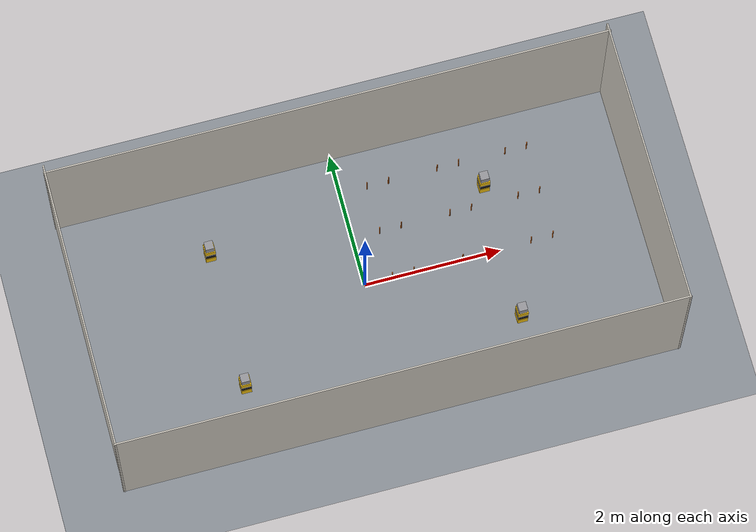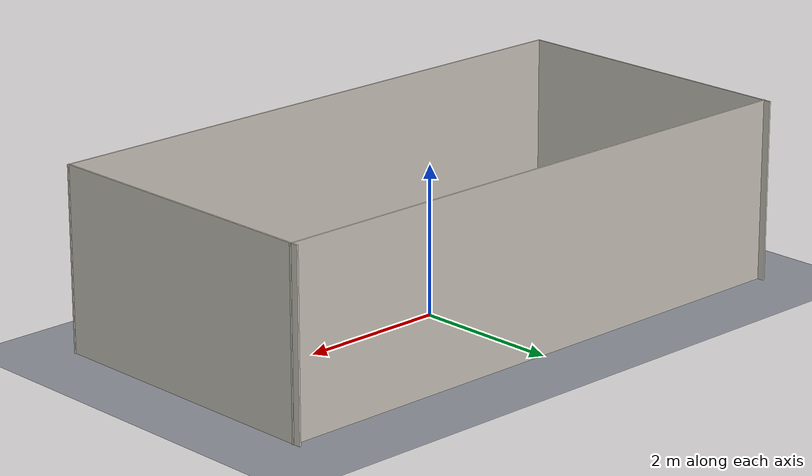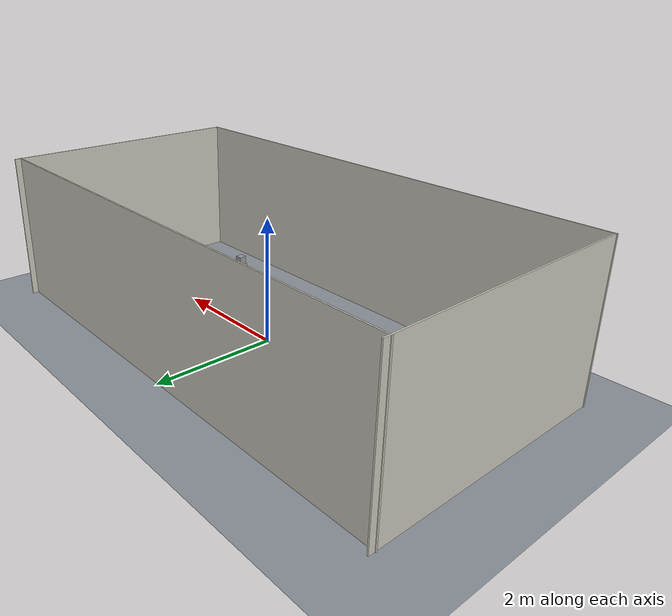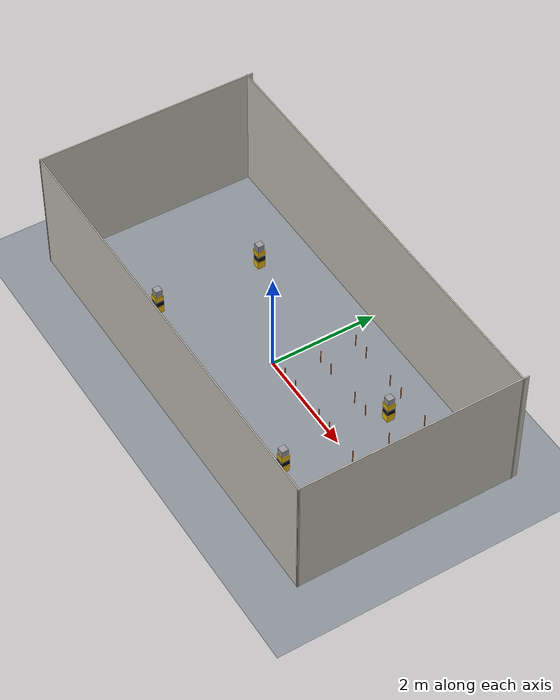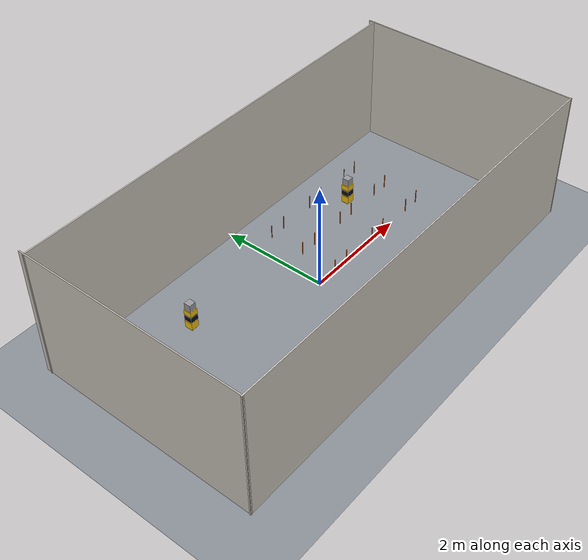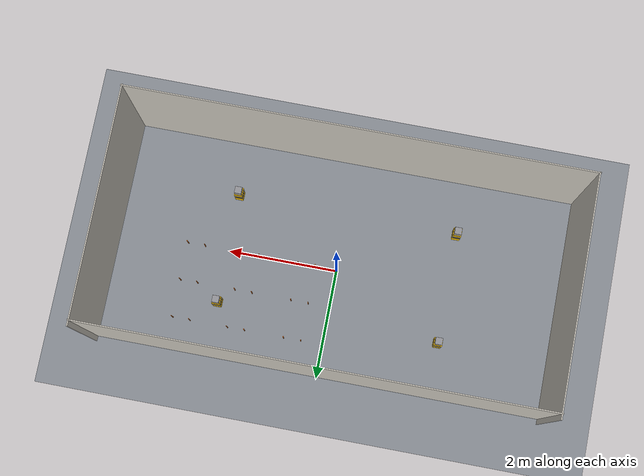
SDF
<?xml version="1.0" ?>
<sdf version="1.7">
  <world name="crowd_nav_depot_scaled">
    <physics name="10ms" type="ignored">
      <max_step_size>0.01</max_step_size>
      <real_time_factor>1.0</real_time_factor>
    </physics>
    <plugin filename="libignition-gazebo-physics-system.so" name="ignition::gazebo::systems::Physics"/>
    <plugin filename="libignition-gazebo-user-commands-system.so" name="ignition::gazebo::systems::UserCommands"/>
    <plugin filename="libignition-gazebo-scene-broadcaster-system.so" name="ignition::gazebo::systems::SceneBroadcaster"/>
    <plugin filename="ignition-gazebo-sensors-system" name="ignition::gazebo::systems::Sensors">
      <render_engine>ogre2</render_engine>
    </plugin>

    <scene>
      <ambient>0.40 0.40 0.42 1</ambient>
      <background>0.55 0.60 0.65 1</background>
      <shadows>true</shadows>
      <grid>false</grid>
    </scene>

    <light type="directional" name="sun">
      <cast_shadows>true</cast_shadows>
      <pose>0 0 10 0 0 0</pose>
      <diffuse>0.85 0.82 0.78 1</diffuse>
      <specular>0.2 0.2 0.2 1</specular>
      <attenuation><range>1000</range><constant>0.9</constant><linear>0.01</linear><quadratic>0.001</quadratic></attenuation>
      <direction>-0.5 0.1 -0.9</direction>
    </light>

    <light type="point" name="ceiling_light_1">
      <pose>-2.5 0 2.3 0 0 0</pose>
      <diffuse>1.0 0.95 0.85 1</diffuse>
      <specular>0.3 0.3 0.3 1</specular>
      <attenuation><range>8</range><constant>0.3</constant><linear>0.2</linear><quadratic>0.05</quadratic></attenuation>
      <cast_shadows>false</cast_shadows>
    </light>
    <light type="point" name="ceiling_light_2">
      <pose>0.5 0 2.3 0 0 0</pose>
      <diffuse>1.0 0.95 0.85 1</diffuse>
      <specular>0.3 0.3 0.3 1</specular>
      <attenuation><range>8</range><constant>0.3</constant><linear>0.2</linear><quadratic>0.05</quadratic></attenuation>
      <cast_shadows>false</cast_shadows>
    </light>
    <light type="point" name="ceiling_light_3">
      <pose>3.2 0 2.3 0 0 0</pose>
      <diffuse>1.0 0.95 0.85 1</diffuse>
      <specular>0.3 0.3 0.3 1</specular>
      <attenuation><range>8</range><constant>0.3</constant><linear>0.2</linear><quadratic>0.05</quadratic></attenuation>
      <cast_shadows>false</cast_shadows>
    </light>

    <model name="ground_plane">
      <static>true</static>
      <link name="link">
        <collision name="collision">
          <geometry><plane><normal>0 0 1</normal><size>20 20</size></plane></geometry>
          <surface><friction><ode/></friction></surface>
        </collision>
        <visual name="visual">
          <geometry><plane><normal>0 0 1</normal><size>20 20</size></plane></geometry>
          <material><ambient>0.55 0.57 0.60 1</ambient><diffuse>0.55 0.57 0.60 1</diffuse><specular>0.25 0.25 0.28 1</specular></material>
        </visual>
      </link>
    </model>

    <model name="depot_scaled">
      <static>true</static>
      <link name="link">

        <visual name='wall1_visual'>
          <pose>0.00000 -2.05548 1.21500 0 0 0</pose>
          <geometry><box><size>8.14509 0.02160 2.43000</size></box></geometry>
          <material><ambient>0.80 0.78 0.74 1</ambient><diffuse>0.80 0.78 0.74 1</diffuse><specular>0.15 0.15 0.15 1</specular></material>
        </visual>

        <collision name='wall1_collision'>
          <pose>0.00000 -2.05548 1.21500 0 0 0</pose>
          <geometry><box><size>8.14509 0.02160 2.43000</size></box></geometry>
        </collision>

        <visual name='wall2_visual'>
          <pose>0.00000 1.96762 1.21500 0 0 0</pose>
          <geometry><box><size>8.14509 0.02160 2.43000</size></box></geometry>
          <material><ambient>0.80 0.78 0.74 1</ambient><diffuse>0.80 0.78 0.74 1</diffuse><specular>0.15 0.15 0.15 1</specular></material>
        </visual>

        <collision name='wall2_collision'>
          <pose>0.00000 1.96762 1.21500 0 0 0</pose>
          <geometry><box><size>8.14509 0.02160 2.43000</size></box></geometry>
        </collision>

        <visual name='wall3_visual'>
          <pose>-4.05000 0.00000 1.21500 0 0 0</pose>
          <geometry><box><size>0.02160 4.14720 2.43000</size></box></geometry>
          <material><ambient>0.80 0.78 0.74 1</ambient><diffuse>0.80 0.78 0.74 1</diffuse><specular>0.15 0.15 0.15 1</specular></material>
        </visual>

        <collision name='wall3_collision'>
          <pose>-4.05000 0.00000 1.21500 0 0 0</pose>
          <geometry><box><size>0.02160 4.14720 2.43000</size></box></geometry>
        </collision>

        <visual name='wall4_visual'>
          <pose>4.05000 0.00000 1.21500 0 0 0</pose>
          <geometry><box><size>0.02160 4.14720 2.43000</size></box></geometry>
          <material><ambient>0.80 0.78 0.74 1</ambient><diffuse>0.80 0.78 0.74 1</diffuse><specular>0.15 0.15 0.15 1</specular></material>
        </visual>

        <collision name='wall4_collision'>
          <pose>4.05000 0.00000 1.21500 0 0 0</pose>
          <geometry><box><size>0.02160 4.14720 2.43000</size></box></geometry>
        </collision>

        <visual name='shelf1_visual'>
          <pose>0.39587 -0.00474 0.13500 0 0 0</pose>
          <geometry><cylinder><radius>0.00810</radius><length>0.27000</length></cylinder></geometry>
          <material><ambient>0.85 0.42 0.10 1</ambient><diffuse>0.85 0.42 0.10 1</diffuse><specular>0.35 0.30 0.20 1</specular></material>
        </visual>

        <collision name='shelf1_collision'>
          <pose>0.39587 -0.00474 0.13500 0 0 0</pose>
          <geometry><cylinder><radius>0.00810</radius><length>0.27000</length></cylinder></geometry>
        </collision>

        <visual name='shelf2_visual'>
          <pose>0.71504 -0.00474 0.13500 0 0 0</pose>
          <geometry><cylinder><radius>0.00810</radius><length>0.27000</length></cylinder></geometry>
          <material><ambient>0.85 0.42 0.10 1</ambient><diffuse>0.85 0.42 0.10 1</diffuse><specular>0.35 0.30 0.20 1</specular></material>
        </visual>

        <collision name='shelf2_collision'>
          <pose>0.71504 -0.00474 0.13500 0 0 0</pose>
          <geometry><cylinder><radius>0.00810</radius><length>0.27000</length></cylinder></geometry>
        </collision>

        <visual name='shelf3_visual'>
          <pose>1.43767 -0.00474 0.13500 0 0 0</pose>
          <geometry><cylinder><radius>0.00810</radius><length>0.27000</length></cylinder></geometry>
          <material><ambient>0.85 0.42 0.10 1</ambient><diffuse>0.85 0.42 0.10 1</diffuse><specular>0.35 0.30 0.20 1</specular></material>
        </visual>

        <collision name='shelf3_collision'>
          <pose>1.43767 -0.00474 0.13500 0 0 0</pose>
          <geometry><cylinder><radius>0.00810</radius><length>0.27000</length></cylinder></geometry>
        </collision>

        <visual name='shelf4_visual'>
          <pose>1.75670 -0.00474 0.13500 0 0 0</pose>
          <geometry><cylinder><radius>0.00810</radius><length>0.27000</length></cylinder></geometry>
          <material><ambient>0.85 0.42 0.10 1</ambient><diffuse>0.85 0.42 0.10 1</diffuse><specular>0.35 0.30 0.20 1</specular></material>
        </visual>

        <collision name='shelf4_collision'>
          <pose>1.75670 -0.00474 0.13500 0 0 0</pose>
          <geometry><cylinder><radius>0.00810</radius><length>0.27000</length></cylinder></geometry>
        </collision>

        <visual name='shelf5_visual'>
          <pose>2.45047 -0.00474 0.13500 0 0 0</pose>
          <geometry><cylinder><radius>0.00810</radius><length>0.27000</length></cylinder></geometry>
          <material><ambient>0.85 0.42 0.10 1</ambient><diffuse>0.85 0.42 0.10 1</diffuse><specular>0.35 0.30 0.20 1</specular></material>
        </visual>

        <collision name='shelf5_collision'>
          <pose>2.45047 -0.00474 0.13500 0 0 0</pose>
          <geometry><cylinder><radius>0.00810</radius><length>0.27000</length></cylinder></geometry>
        </collision>

        <visual name='shelf6_visual'>
          <pose>2.76966 -0.00474 0.13500 0 0 0</pose>
          <geometry><cylinder><radius>0.00810</radius><length>0.27000</length></cylinder></geometry>
          <material><ambient>0.85 0.42 0.10 1</ambient><diffuse>0.85 0.42 0.10 1</diffuse><specular>0.35 0.30 0.20 1</specular></material>
        </visual>

        <collision name='shelf6_collision'>
          <pose>2.76966 -0.00474 0.13500 0 0 0</pose>
          <geometry><cylinder><radius>0.00810</radius><length>0.27000</length></cylinder></geometry>
        </collision>

        <visual name='shelf7_visual'>
          <pose>0.39587 0.69293 0.13500 0 0 0</pose>
          <geometry><cylinder><radius>0.00810</radius><length>0.27000</length></cylinder></geometry>
          <material><ambient>0.85 0.42 0.10 1</ambient><diffuse>0.85 0.42 0.10 1</diffuse><specular>0.35 0.30 0.20 1</specular></material>
        </visual>

        <collision name='shelf7_collision'>
          <pose>0.39587 0.69293 0.13500 0 0 0</pose>
          <geometry><cylinder><radius>0.00810</radius><length>0.27000</length></cylinder></geometry>
        </collision>

        <visual name='shelf8_visual'>
          <pose>0.71504 0.69293 0.13500 0 0 0</pose>
          <geometry><cylinder><radius>0.00810</radius><length>0.27000</length></cylinder></geometry>
          <material><ambient>0.85 0.42 0.10 1</ambient><diffuse>0.85 0.42 0.10 1</diffuse><specular>0.35 0.30 0.20 1</specular></material>
        </visual>

        <collision name='shelf8_collision'>
          <pose>0.71504 0.69293 0.13500 0 0 0</pose>
          <geometry><cylinder><radius>0.00810</radius><length>0.27000</length></cylinder></geometry>
        </collision>

        <visual name='shelf9_visual'>
          <pose>1.43767 0.69293 0.13500 0 0 0</pose>
          <geometry><cylinder><radius>0.00810</radius><length>0.27000</length></cylinder></geometry>
          <material><ambient>0.85 0.42 0.10 1</ambient><diffuse>0.85 0.42 0.10 1</diffuse><specular>0.35 0.30 0.20 1</specular></material>
        </visual>

        <collision name='shelf9_collision'>
          <pose>1.43767 0.69293 0.13500 0 0 0</pose>
          <geometry><cylinder><radius>0.00810</radius><length>0.27000</length></cylinder></geometry>
        </collision>

        <visual name='shelf10_visual'>
          <pose>1.75670 0.69293 0.13500 0 0 0</pose>
          <geometry><cylinder><radius>0.00810</radius><length>0.27000</length></cylinder></geometry>
          <material><ambient>0.85 0.42 0.10 1</ambient><diffuse>0.85 0.42 0.10 1</diffuse><specular>0.35 0.30 0.20 1</specular></material>
        </visual>

        <collision name='shelf10_collision'>
          <pose>1.75670 0.69293 0.13500 0 0 0</pose>
          <geometry><cylinder><radius>0.00810</radius><length>0.27000</length></cylinder></geometry>
        </collision>

        <visual name='shelf11_visual'>
          <pose>2.45047 0.69293 0.13500 0 0 0</pose>
          <geometry><cylinder><radius>0.00810</radius><length>0.27000</length></cylinder></geometry>
          <material><ambient>0.85 0.42 0.10 1</ambient><diffuse>0.85 0.42 0.10 1</diffuse><specular>0.35 0.30 0.20 1</specular></material>
        </visual>

        <collision name='shelf11_collision'>
          <pose>2.45047 0.69293 0.13500 0 0 0</pose>
          <geometry><cylinder><radius>0.00810</radius><length>0.27000</length></cylinder></geometry>
        </collision>

        <visual name='shelf12_visual'>
          <pose>2.76966 0.69293 0.13500 0 0 0</pose>
          <geometry><cylinder><radius>0.00810</radius><length>0.27000</length></cylinder></geometry>
          <material><ambient>0.85 0.42 0.10 1</ambient><diffuse>0.85 0.42 0.10 1</diffuse><specular>0.35 0.30 0.20 1</specular></material>
        </visual>

        <collision name='shelf12_collision'>
          <pose>2.76966 0.69293 0.13500 0 0 0</pose>
          <geometry><cylinder><radius>0.00810</radius><length>0.27000</length></cylinder></geometry>
        </collision>

        <visual name='shelf13_visual'>
          <pose>0.39587 1.39042 0.13500 0 0 0</pose>
          <geometry><cylinder><radius>0.00810</radius><length>0.27000</length></cylinder></geometry>
          <material><ambient>0.85 0.42 0.10 1</ambient><diffuse>0.85 0.42 0.10 1</diffuse><specular>0.35 0.30 0.20 1</specular></material>
        </visual>

        <collision name='shelf13_collision'>
          <pose>0.39587 1.39042 0.13500 0 0 0</pose>
          <geometry><cylinder><radius>0.00810</radius><length>0.27000</length></cylinder></geometry>
        </collision>

        <visual name='shelf14_visual'>
          <pose>0.71504 1.39042 0.13500 0 0 0</pose>
          <geometry><cylinder><radius>0.00810</radius><length>0.27000</length></cylinder></geometry>
          <material><ambient>0.85 0.42 0.10 1</ambient><diffuse>0.85 0.42 0.10 1</diffuse><specular>0.35 0.30 0.20 1</specular></material>
        </visual>

        <collision name='shelf14_collision'>
          <pose>0.71504 1.39042 0.13500 0 0 0</pose>
          <geometry><cylinder><radius>0.00810</radius><length>0.27000</length></cylinder></geometry>
        </collision>

        <visual name='shelf15_visual'>
          <pose>1.43767 1.39042 0.13500 0 0 0</pose>
          <geometry><cylinder><radius>0.00810</radius><length>0.27000</length></cylinder></geometry>
          <material><ambient>0.85 0.42 0.10 1</ambient><diffuse>0.85 0.42 0.10 1</diffuse><specular>0.35 0.30 0.20 1</specular></material>
        </visual>

        <collision name='shelf15_collision'>
          <pose>1.43767 1.39042 0.13500 0 0 0</pose>
          <geometry><cylinder><radius>0.00810</radius><length>0.27000</length></cylinder></geometry>
        </collision>

        <visual name='shelf16_visual'>
          <pose>1.75670 1.39042 0.13500 0 0 0</pose>
          <geometry><cylinder><radius>0.00810</radius><length>0.27000</length></cylinder></geometry>
          <material><ambient>0.85 0.42 0.10 1</ambient><diffuse>0.85 0.42 0.10 1</diffuse><specular>0.35 0.30 0.20 1</specular></material>
        </visual>

        <collision name='shelf16_collision'>
          <pose>1.75670 1.39042 0.13500 0 0 0</pose>
          <geometry><cylinder><radius>0.00810</radius><length>0.27000</length></cylinder></geometry>
        </collision>

        <visual name='shelf17_visual'>
          <pose>2.45047 1.39042 0.13500 0 0 0</pose>
          <geometry><cylinder><radius>0.00810</radius><length>0.27000</length></cylinder></geometry>
          <material><ambient>0.85 0.42 0.10 1</ambient><diffuse>0.85 0.42 0.10 1</diffuse><specular>0.35 0.30 0.20 1</specular></material>
        </visual>

        <collision name='shelf17_collision'>
          <pose>2.45047 1.39042 0.13500 0 0 0</pose>
          <geometry><cylinder><radius>0.00810</radius><length>0.27000</length></cylinder></geometry>
        </collision>

        <visual name='shelf18_visual'>
          <pose>2.76966 1.39042 0.13500 0 0 0</pose>
          <geometry><cylinder><radius>0.00810</radius><length>0.27000</length></cylinder></geometry>
          <material><ambient>0.85 0.42 0.10 1</ambient><diffuse>0.85 0.42 0.10 1</diffuse><specular>0.35 0.30 0.20 1</specular></material>
        </visual>

        <collision name='shelf18_collision'>
          <pose>2.76966 1.39042 0.13500 0 0 0</pose>
          <geometry><cylinder><radius>0.00810</radius><length>0.27000</length></cylinder></geometry>
        </collision>

        <visual name='pilar1_visual'>
          <pose>-2.03585 0.97608 0.27000 0 0 0</pose>
          <geometry><box><size>0.12555 0.12555 0.54000</size></box></geometry>
          <material><ambient>0.60 0.60 0.62 1</ambient><diffuse>0.60 0.60 0.62 1</diffuse><specular>0.20 0.20 0.20 1</specular></material>
        </visual>

        <collision name='pilar1_collision'>
          <pose>-2.03585 0.97608 0.27000 0 0 0</pose>
          <geometry><box><size>0.12555 0.12555 0.54000</size></box></geometry>
        </collision>

        <visual name='pilar1_hazard_band1'>
          <pose>-2.03585 0.97608 0.09000 0 0 0</pose>
          <geometry><box><size>0.15000 0.15000 0.14000</size></box></geometry>
          <material><ambient>0.95 0.75 0.05 1</ambient><diffuse>0.95 0.75 0.05 1</diffuse></material>
        </visual>
        <visual name='pilar1_hazard_band2'>
          <pose>-2.03585 0.97608 0.23000 0 0 0</pose>
          <geometry><box><size>0.15000 0.15000 0.10000</size></box></geometry>
          <material><ambient>0.05 0.05 0.05 1</ambient><diffuse>0.05 0.05 0.05 1</diffuse></material>
        </visual>
        <visual name='pilar1_hazard_band3'>
          <pose>-2.03585 0.97608 0.35000 0 0 0</pose>
          <geometry><box><size>0.15000 0.15000 0.10000</size></box></geometry>
          <material><ambient>0.95 0.75 0.05 1</ambient><diffuse>0.95 0.75 0.05 1</diffuse></material>
        </visual>

        <visual name='pilar2_visual'>
          <pose>2.01353 0.97608 0.27000 0 0 0</pose>
          <geometry><box><size>0.12555 0.12555 0.54000</size></box></geometry>
          <material><ambient>0.60 0.60 0.62 1</ambient><diffuse>0.60 0.60 0.62 1</diffuse><specular>0.20 0.20 0.20 1</specular></material>
        </visual>

        <collision name='pilar2_collision'>
          <pose>2.01353 0.97608 0.27000 0 0 0</pose>
          <geometry><box><size>0.12555 0.12555 0.54000</size></box></geometry>
        </collision>

        <visual name='pilar2_hazard_band1'>
          <pose>2.01353 0.97608 0.09000 0 0 0</pose>
          <geometry><box><size>0.15000 0.15000 0.14000</size></box></geometry>
          <material><ambient>0.95 0.75 0.05 1</ambient><diffuse>0.95 0.75 0.05 1</diffuse></material>
        </visual>
        <visual name='pilar2_hazard_band2'>
          <pose>2.01353 0.97608 0.23000 0 0 0</pose>
          <geometry><box><size>0.15000 0.15000 0.10000</size></box></geometry>
          <material><ambient>0.05 0.05 0.05 1</ambient><diffuse>0.05 0.05 0.05 1</diffuse></material>
        </visual>
        <visual name='pilar2_hazard_band3'>
          <pose>2.01353 0.97608 0.35000 0 0 0</pose>
          <geometry><box><size>0.15000 0.15000 0.10000</size></box></geometry>
          <material><ambient>0.95 0.75 0.05 1</ambient><diffuse>0.95 0.75 0.05 1</diffuse></material>
        </visual>

        <visual name='pilar3_visual'>
          <pose>-2.03585 -1.04914 0.27000 0 0 0</pose>
          <geometry><box><size>0.12555 0.12555 0.54000</size></box></geometry>
          <material><ambient>0.60 0.60 0.62 1</ambient><diffuse>0.60 0.60 0.62 1</diffuse><specular>0.20 0.20 0.20 1</specular></material>
        </visual>

        <collision name='pilar3_collision'>
          <pose>-2.03585 -1.04914 0.27000 0 0 0</pose>
          <geometry><box><size>0.12555 0.12555 0.54000</size></box></geometry>
        </collision>

        <visual name='pilar3_hazard_band1'>
          <pose>-2.03585 -1.04914 0.09000 0 0 0</pose>
          <geometry><box><size>0.15000 0.15000 0.14000</size></box></geometry>
          <material><ambient>0.95 0.75 0.05 1</ambient><diffuse>0.95 0.75 0.05 1</diffuse></material>
        </visual>
        <visual name='pilar3_hazard_band2'>
          <pose>-2.03585 -1.04914 0.23000 0 0 0</pose>
          <geometry><box><size>0.15000 0.15000 0.10000</size></box></geometry>
          <material><ambient>0.05 0.05 0.05 1</ambient><diffuse>0.05 0.05 0.05 1</diffuse></material>
        </visual>
        <visual name='pilar3_hazard_band3'>
          <pose>-2.03585 -1.04914 0.35000 0 0 0</pose>
          <geometry><box><size>0.15000 0.15000 0.10000</size></box></geometry>
          <material><ambient>0.95 0.75 0.05 1</ambient><diffuse>0.95 0.75 0.05 1</diffuse></material>
        </visual>

        <visual name='pilar4_visual'>
          <pose>2.01353 -1.04914 0.27000 0 0 0</pose>
          <geometry><box><size>0.12555 0.12555 0.54000</size></box></geometry>
          <material><ambient>0.60 0.60 0.62 1</ambient><diffuse>0.60 0.60 0.62 1</diffuse><specular>0.20 0.20 0.20 1</specular></material>
        </visual>

        <collision name='pilar4_collision'>
          <pose>2.01353 -1.04914 0.27000 0 0 0</pose>
          <geometry><box><size>0.12555 0.12555 0.54000</size></box></geometry>
        </collision>

        <visual name='pilar4_hazard_band1'>
          <pose>2.01353 -1.04914 0.09000 0 0 0</pose>
          <geometry><box><size>0.15000 0.15000 0.14000</size></box></geometry>
          <material><ambient>0.95 0.75 0.05 1</ambient><diffuse>0.95 0.75 0.05 1</diffuse></material>
        </visual>
        <visual name='pilar4_hazard_band2'>
          <pose>2.01353 -1.04914 0.23000 0 0 0</pose>
          <geometry><box><size>0.15000 0.15000 0.10000</size></box></geometry>
          <material><ambient>0.05 0.05 0.05 1</ambient><diffuse>0.05 0.05 0.05 1</diffuse></material>
        </visual>
        <visual name='pilar4_hazard_band3'>
          <pose>2.01353 -1.04914 0.35000 0 0 0</pose>
          <geometry><box><size>0.15000 0.15000 0.10000</size></box></geometry>
          <material><ambient>0.95 0.75 0.05 1</ambient><diffuse>0.95 0.75 0.05 1</diffuse></material>
        </visual>
      </link>
    </model>
  </world>
</sdf>
